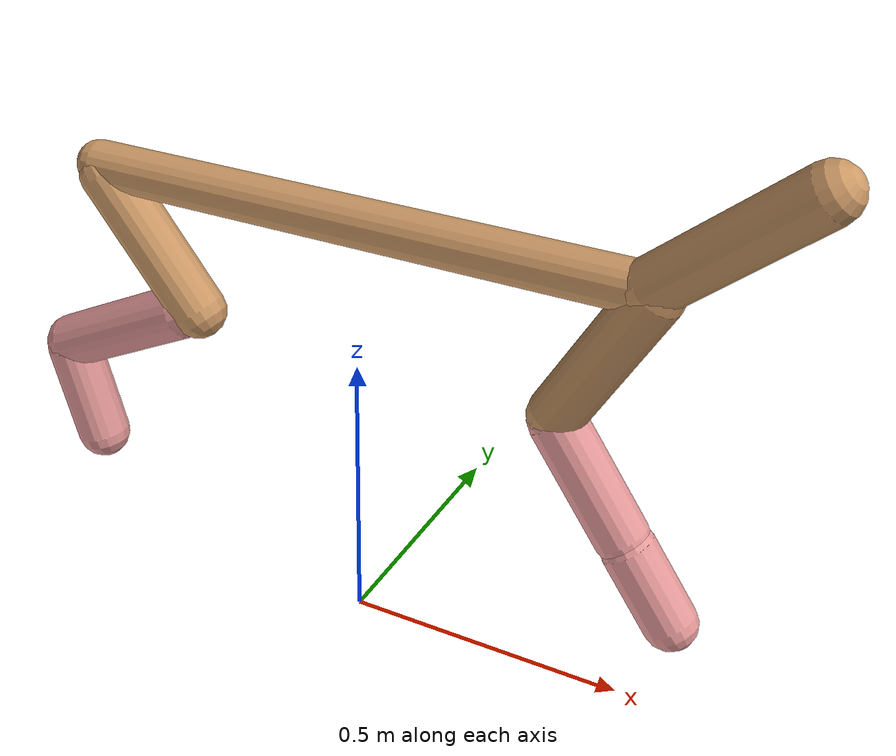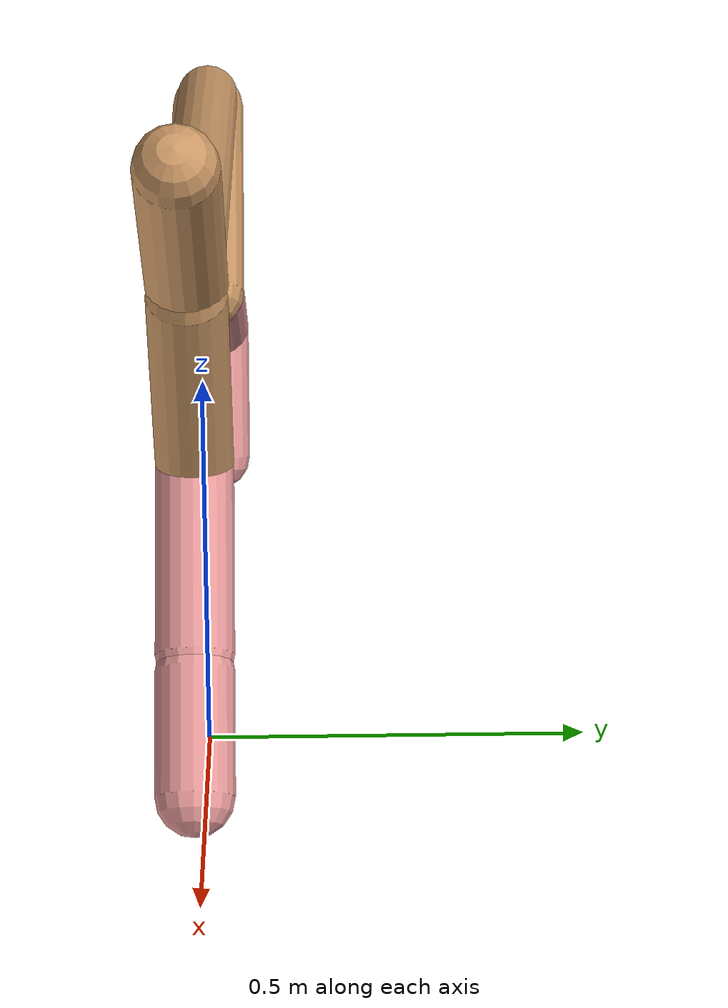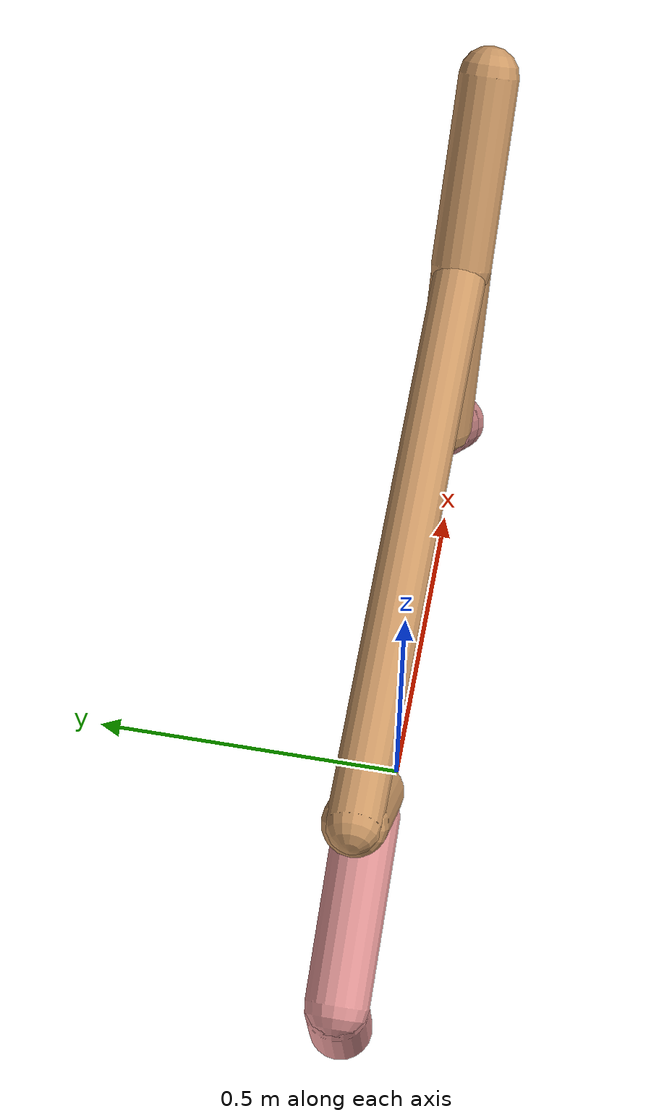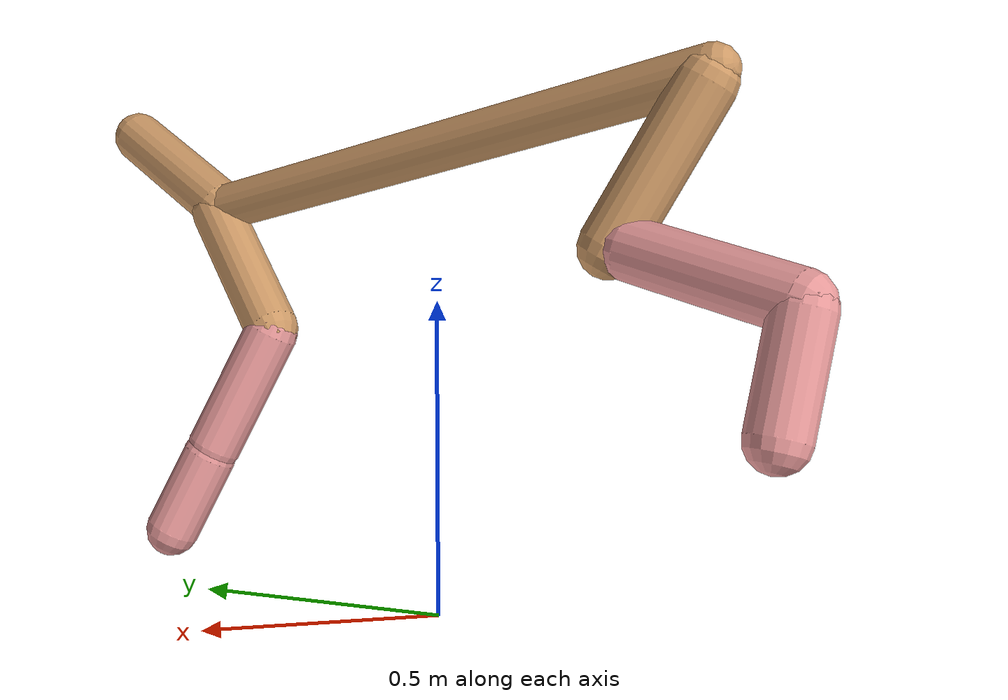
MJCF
<mujoco model="cheetah">
  <compiler angle="radian" coordinate="local" inertiafromgeom="true" settotalmass="14" />
  <default>
    <joint armature=".1" damping=".01" limited="true" solimplimit="0 .8 .03" solreflimit=".02 1" stiffness="8" />
    <geom conaffinity="0" condim="3" contype="1" friction="0.8 .1 .1" rgba="0.8 0.6 .4 1" solimp="0.0 0.8 0.01" solref="0.02 1" />
    <motor ctrllimited="true" ctrlrange="-1 1" />
  </default>
  <size nstack="300000" nuser_geom="1" />
  <option gravity="0 0 -9.81" timestep="0.01" />
  <worldbody>
    <body name="torso" pos="0.0 0.0 0.7648805542155366">
      <joint armature="0" axis="1 0 0" damping="0" limited="false" name="ignorex" pos="0 0 0" stiffness="0" type="slide" />
      <joint armature="0" axis="0 0 1" damping="0" limited="false" name="ignorez" pos="0 0 0" stiffness="0" type="slide" />
      <joint armature="0" axis="0 1 0" damping="0" limited="false" name="ignorey" pos="0 0 0" stiffness="0" type="hinge" />
      <geom fromto="-0.5 0.0 0.0 0.5006848543595951 0.0 0.0" name="torso" size="0.04149351807382377" type="capsule" />
      <geom axisangle="0 1 0 .87" name="head" pos="0.6006848543595952 0.0 0.1" size="0.04721422961651341 0.15" type="capsule" />

      <body name="bthigh" pos="-.5 0 0">
        <joint axis="0 1 0" damping="6" name="bthigh" pos="0 0 0" range="-.52 1.05" stiffness="240" type="hinge" />
        <geom axisangle="0 1 0 -3.8" name="bthigh" pos="0.097218055988168 0.0 -0.12638347278461842" size="0.0493155658187561 0.14043727257174354" type="capsule" />
        <body name="bshin" pos="0.154436111976336 0.0 -0.2427669455692368">
          <joint axis="0 1 0" damping="4.5" name="bshin" pos="0 0 0" range="-.785 .785" stiffness="180" type="hinge" />
          <geom axisangle="0 1 0 -2.03" name="bshin" pos="-0.13577824743763414 0.0 -0.06788912371881707" rgba="0.9 0.6 0.6 1" size="0.0493155658187561 0.145279937143183" type="capsule" />
          <body name="bfoot" pos="-0.2715564948752683 0.0 -0.13577824743763414">
            <joint axis="0 1 0" damping="3" name="bfoot" pos="0 0 0" range="-.4 .785" stiffness="120" type="hinge" />
            <geom axisangle="0 1 0 -.27" name="bfoot" pos="0.029126028316926827 0.0 -0.09417415822473008" rgba="0.9 0.6 0.6 1" size="0.0493155658187561 0.09104209394306134" type="capsule" />
            <inertial mass="10" />
          </body>
        </body>
      </body>
      <body name="fthigh" pos="0.5006848543595952 0.0 0.0">
        <joint axis="0 1 0" damping="4.5" name="fthigh" pos="0 0 0" range="-1.5 0.8" stiffness="180" type="hinge" />
        <geom axisangle="0 1 0 .52" name="fthigh" pos="-0.0745480757058132 0.0 -0.12779670120996547" size="0.046725887680796115 0.14202626957182676" type="capsule" />
        <body name="fshin" pos="-0.1490961514116264 0.0 -0.25559340241993095">
          <joint axis="0 1 0" damping="3" name="fshin" pos="0 0 0" range="-1.2 1.1" stiffness="120" type="hinge" />
          <geom axisangle="0 1 0 -.6" name="fshin" pos="0.06921194233458855 0.0 -0.09583192015558414" rgba="0.9 0.6 0.6 1" size="0.046725887680796115 0.11319386898205742" type="capsule" />
          <body name="ffoot" pos="0.1384238846691771 0.0 -0.1916638403111683">
            <joint axis="0 1 0" damping="1.5" name="ffoot" pos="0 0 0" range="-3.1 -0.3" stiffness="60" type="hinge" />
            <geom axisangle="0 1 0 -.6" name="ffoot" pos="0.04756895989063545 0.0 -0.07399615982987738" rgba="0.9 0.6 0.6 1" size="0.046725887680796115 0.07475066819569831" type="capsule" />
            <inertial mass="10" />
          </body>
        </body>
      </body>
    </body>
  </worldbody>
  <actuator>
    <motor gear="120" joint="bthigh" name="bthigh" />
    <motor gear="90" joint="bshin" name="bshin" />
    <motor gear="60" joint="bfoot" name="bfoot" />
    <motor gear="120" joint="fthigh" name="fthigh" />
    <motor gear="60" joint="fshin" name="fshin" />
    <motor gear="30" joint="ffoot" name="ffoot" />
  </actuator>
</mujoco>
